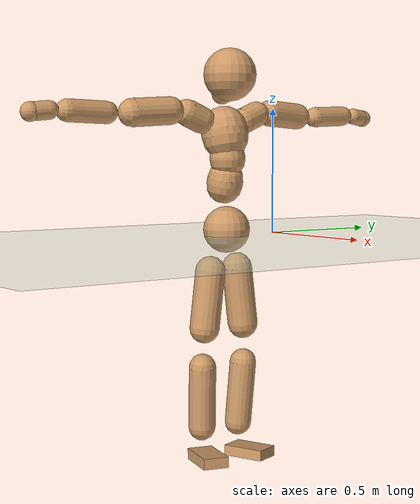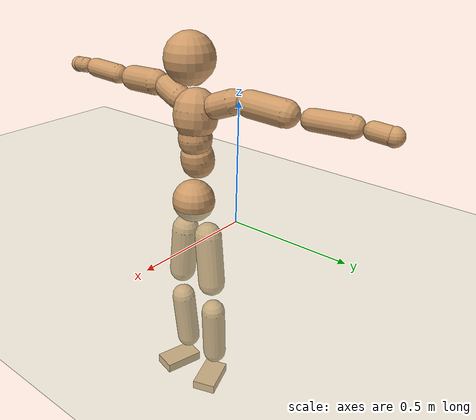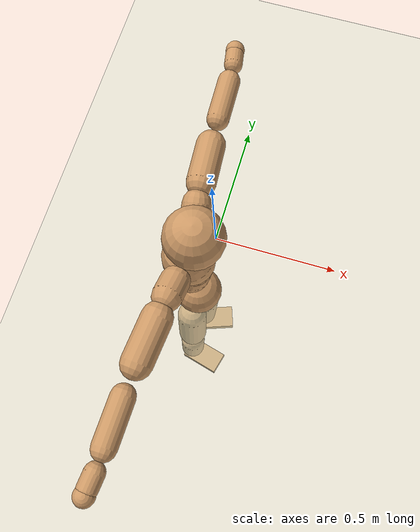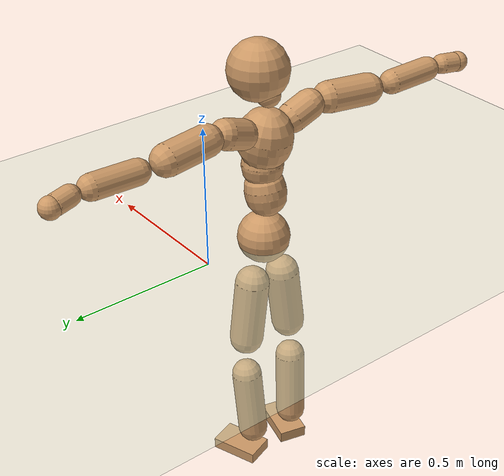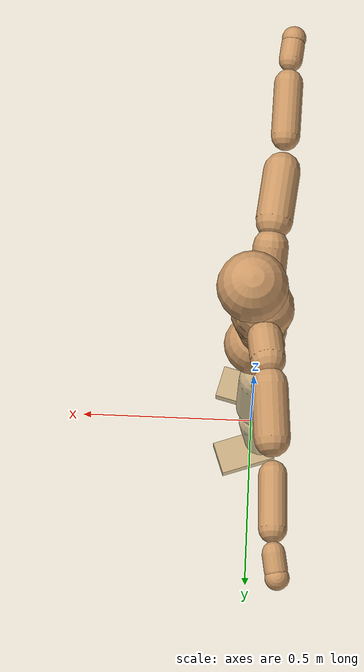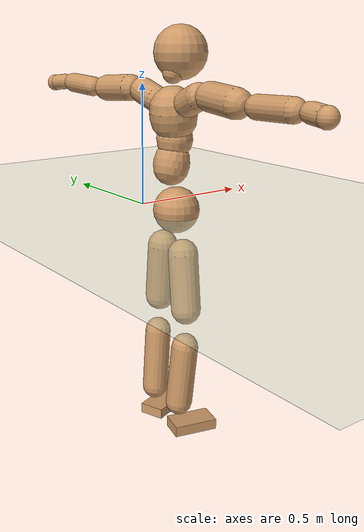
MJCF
<mujoco model="humanoid">
  <compiler coordinate="local"/>
  <default>
    <joint damping="0.0" armature="0.01" stiffness="0.0" limited="true"/>
    <geom conaffinity="1" condim="3" contype="7" margin="0.001" rgba="0.8 0.6 .4 1"/>
  </default>
  <asset>
    <texture type="skybox" builtin="gradient" rgb1=".4 .5 .6" rgb2="0 0 0" width="100" height="100"/>
    <texture builtin="flat" height="1278" mark="cross" markrgb="1 1 1" name="texgeom" random="0.01" rgb1="0.8 0.6 0.4" rgb2="0.8 0.6 0.4" type="cube" width="127"/>
    <texture builtin="checker" height="100" name="texplane" rgb1="0 0 0" rgb2="0.8 0.8 0.8" type="2d" width="100"/>
    <material name="MatPlane" reflectance="0.5" shininess="1" specular="1" texrepeat="60 60" texture="texplane"/>
    <material name="geom" texture="texgeom" texuniform="true"/>
  </asset>
  <worldbody>
    <light cutoff="100" diffuse="1 1 1" dir="-0 0 -1.3" directional="true" exponent="1" pos="0 0 1.3" specular=".1 .1 .1"/>
    <geom conaffinity="1" condim="3" name="floor" pos="0 0 0" rgba="0.8 0.9 0.8 1" size="100 100 .2" type="plane" material="MatPlane"/>
    <body name="Pelvis" pos="-0.0012 -0.2331 0.0225">
      <freejoint name="Pelvis"/>
      <geom type="sphere" contype="1" conaffinity="1" density="500" size="0.0921" pos="0.0000 0.0000 0.0000" name="Pelvis"/>
      <body name="L_Hip" pos="-0.0197 0.0568 -0.0801">
        <joint name="L_Hip_x" type="hinge" pos="0 0 0" axis="1 0 0" stiffness="800" damping="80" armature="0.02" range="-180.0000 180.0000"/>
        <joint name="L_Hip_y" type="hinge" pos="0 0 0" axis="0 1 0" stiffness="800" damping="80" armature="0.02" range="-180.0000 180.0000"/>
        <joint name="L_Hip_z" type="hinge" pos="0 0 0" axis="0 0 1" stiffness="800" damping="80" armature="0.02" range="-180.0000 180.0000"/>
        <geom type="capsule" contype="1" conaffinity="1" density="500" fromto="0.0016 0.0087 -0.0761 0.0062 0.0348 -0.3045" size="0.0597" name="L_Hip"/>
        <body name="L_Knee" pos="0.0078 0.0435 -0.3806">
          <joint name="L_Knee_x" type="hinge" pos="0 0 0" axis="1 0 0" stiffness="800" damping="80" armature="0.02" range="-180.0000 180.0000"/>
          <joint name="L_Knee_y" type="hinge" pos="0 0 0" axis="0 1 0" stiffness="800" damping="80" armature="0.02" range="-180.0000 180.0000"/>
          <joint name="L_Knee_z" type="hinge" pos="0 0 0" axis="0 0 1" stiffness="800" damping="80" armature="0.02" range="-180.0000 180.0000"/>
          <geom type="capsule" contype="1" conaffinity="1" density="500" fromto="-0.0071 -0.0028 -0.0832 -0.0286 -0.0113 -0.3329" size="0.0535" name="L_Knee"/>
          <body name="L_Ankle" pos="-0.0357 -0.0141 -0.4161">
            <joint name="L_Ankle_x" type="hinge" pos="0 0 0" axis="1 0 0" stiffness="800" damping="80" armature="0.02" range="-180.0000 180.0000"/>
            <joint name="L_Ankle_y" type="hinge" pos="0 0 0" axis="0 1 0" stiffness="800" damping="80" armature="0.02" range="-180.0000 180.0000"/>
            <joint name="L_Ankle_z" type="hinge" pos="0 0 0" axis="0 0 1" stiffness="800" damping="80" armature="0.02" range="-180.0000 180.0000"/>
            <geom type="box" contype="1" conaffinity="1" density="500" pos="0.0601 0.0212 -0.0297" size="0.0869 0.0519 0.0209" quat="0.9856 0.0000 0.0000 0.1690" name="L_Ankle"/>
            <body name="L_Toe" pos="0.1202 0.0425 -0.0593">
              <joint name="L_Toe_x" type="hinge" pos="0 0 0" axis="1 0 0" stiffness="500" damping="50" armature="0.02" range="-180.0000 180.0000"/>
              <joint name="L_Toe_y" type="hinge" pos="0 0 0" axis="0 1 0" stiffness="500" damping="50" armature="0.02" range="-180.0000 180.0000"/>
              <joint name="L_Toe_z" type="hinge" pos="0 0 0" axis="0 0 1" stiffness="500" damping="50" armature="0.02" range="-180.0000 180.0000"/>
              <geom type="box" contype="1" conaffinity="1" density="500" pos="0.0000 0.0000 0.0294" size="0.0011 0.0025 0.001" quat="0.9848 0.0000 0.0000 0.1736" name="L_Toe"/>
            </body>
          </body>
        </body>
      </body>
      <body name="R_Hip" pos="-0.0162 -0.0586 -0.088">
        <joint name="R_Hip_x" type="hinge" pos="0 0 0" axis="1 0 0" stiffness="800" damping="80" armature="0.02" range="-180.0000 180.0000"/>
        <joint name="R_Hip_y" type="hinge" pos="0 0 0" axis="0 1 0" stiffness="800" damping="80" armature="0.02" range="-180.0000 180.0000"/>
        <joint name="R_Hip_z" type="hinge" pos="0 0 0" axis="0 0 1" stiffness="800" damping="80" armature="0.02" range="-180.0000 180.0000"/>
        <geom type="capsule" contype="1" conaffinity="1" density="500" fromto="-0.0009 -0.0086 -0.0753 -0.0037 -0.0346 -0.3011" size="0.0592" name="R_Hip"/>
        <body name="R_Knee" pos="-0.0046 -0.0432 -0.3764">
          <joint name="R_Knee_x" type="hinge" pos="0 0 0" axis="1 0 0" stiffness="800" damping="80" armature="0.02" range="-180.0000 180.0000"/>
          <joint name="R_Knee_y" type="hinge" pos="0 0 0" axis="0 1 0" stiffness="800" damping="80" armature="0.02" range="-180.0000 180.0000"/>
          <joint name="R_Knee_z" type="hinge" pos="0 0 0" axis="0 0 1" stiffness="800" damping="80" armature="0.02" range="-180.0000 180.0000"/>
          <geom type="capsule" contype="1" conaffinity="1" density="500" fromto="-0.0066 0.0037 -0.0818 -0.0263 0.0148 -0.3271" size="0.0539" name="R_Knee"/>
          <body name="R_Ankle" pos="-0.0329 0.0185 -0.4089">
            <joint name="R_Ankle_x" type="hinge" pos="0 0 0" axis="1 0 0" stiffness="800" damping="80" armature="0.02" range="-180.0000 180.0000"/>
            <joint name="R_Ankle_y" type="hinge" pos="0 0 0" axis="0 1 0" stiffness="800" damping="80" armature="0.02" range="-180.0000 180.0000"/>
            <joint name="R_Ankle_z" type="hinge" pos="0 0 0" axis="0 0 1" stiffness="800" damping="80" armature="0.02" range="-180.0000 180.0000"/>
            <geom type="box" contype="1" conaffinity="1" density="500" pos="0.0644 -0.0165 -0.0308" size="0.0902 0.0509 0.0215" quat="0.9922 0.0000 0.0000 -0.1250" name="R_Ankle"/>
            <body name="R_Toe" pos="0.1289 -0.033 -0.0617">
              <joint name="R_Toe_x" type="hinge" pos="0 0 0" axis="1 0 0" stiffness="500" damping="50" armature="0.02" range="-180.0000 180.0000"/>
              <joint name="R_Toe_y" type="hinge" pos="0 0 0" axis="0 1 0" stiffness="500" damping="50" armature="0.02" range="-180.0000 180.0000"/>
              <joint name="R_Toe_z" type="hinge" pos="0 0 0" axis="0 0 1" stiffness="500" damping="50" armature="0.02" range="-180.0000 180.0000"/>
              <geom type="box" contype="1" conaffinity="1" density="500" pos="0.0000 0.0000 0.0315" size="0.0011 0.0025 0.0011" quat="0.9932 0.0000 0.0000 -0.1160" name="R_Toe"/>
            </body>
          </body>
        </body>
      </body>
      <body name="Torso" pos="-0.0334 0.0043 0.1192">
        <joint name="Torso_x" type="hinge" pos="0 0 0" axis="1 0 0" stiffness="1000" damping="100" armature="0.02" range="-180.0000 180.0000"/>
        <joint name="Torso_y" type="hinge" pos="0 0 0" axis="0 1 0" stiffness="1000" damping="100" armature="0.02" range="-180.0000 180.0000"/>
        <joint name="Torso_z" type="hinge" pos="0 0 0" axis="0 0 1" stiffness="1000" damping="100" armature="0.02" range="-180.0000 180.0000"/>
        <geom type="capsule" contype="1" conaffinity="1" density="500" fromto="0.0165 0.0025 0.0803 0.0110 0.0016 0.0535" size="0.070959" name="Torso"/>
        <body name="Spine" pos="0.0275 0.0041 0.1338">
          <joint name="Spine_x" type="hinge" pos="0 0 0" axis="1 0 0" stiffness="1000" damping="100" armature="0.02" range="-180.0000 180.0000"/>
          <joint name="Spine_y" type="hinge" pos="0 0 0" axis="0 1 0" stiffness="1000" damping="100" armature="0.02" range="-180.0000 180.0000"/>
          <joint name="Spine_z" type="hinge" pos="0 0 0" axis="0 0 1" stiffness="1000" damping="100" armature="0.02" range="-180.0000 180.0000"/>
          <geom type="capsule" contype="1" conaffinity="1" density="500" fromto="0.0015 -0.0014 0.0325 0.0010 -0.0009 0.0217" size="0.070773" name="Spine"/>
          <body name="Chest" pos="0.0025 -0.0023 0.0542">
            <joint name="Chest_x" type="hinge" pos="0 0 0" axis="1 0 0" stiffness="1000" damping="100" armature="0.02" range="-180.0000 180.0000"/>
            <joint name="Chest_y" type="hinge" pos="0 0 0" axis="0 1 0" stiffness="1000" damping="100" armature="0.02" range="-180.0000 180.0000"/>
            <joint name="Chest_z" type="hinge" pos="0 0 0" axis="0 0 1" stiffness="1000" damping="100" armature="0.02" range="-180.0000 180.0000"/>
            <geom type="capsule" contype="1" conaffinity="1" density="500" fromto="-0.0138 -0.0050 0.0854 -0.0092 -0.0034 0.0569" size="0.092163" name="Chest"/>
            <body name="Neck" pos="-0.0291 -0.0133 0.2062">
              <joint name="Neck_x" type="hinge" pos="0 0 0" axis="1 0 0" stiffness="500" damping="50" armature="0.02" range="-180.0000 180.0000"/>
              <joint name="Neck_y" type="hinge" pos="0 0 0" axis="0 1 0" stiffness="500" damping="50" armature="0.02" range="-180.0000 180.0000"/>
              <joint name="Neck_z" type="hinge" pos="0 0 0" axis="0 0 1" stiffness="500" damping="50" armature="0.02" range="-180.0000 180.0000"/>
              <geom type="capsule" contype="1" conaffinity="1" density="500" fromto="0.0101 0.0020 0.0182 0.0402 0.0079 0.0728" size="0.041478" name="Neck"/>
              <body name="Head" pos="0.0503 0.0099 0.091">
                <joint name="Head_x" type="hinge" pos="0 0 0" axis="1 0 0" stiffness="500" damping="50" armature="0.02" range="-180.0000 180.0000"/>
                <joint name="Head_y" type="hinge" pos="0 0 0" axis="0 1 0" stiffness="500" damping="50" armature="0.02" range="-180.0000 180.0000"/>
                <joint name="Head_z" type="hinge" pos="0 0 0" axis="0 0 1" stiffness="500" damping="50" armature="0.02" range="-180.0000 180.0000"/>
                <geom type="sphere" contype="1" conaffinity="1" density="500" size="0.1033" pos="0.0000 0.0000 0.0000" name="Head"/>
              </body>
            </body>
            <body name="L_Thorax" pos="-0.0179 0.0708 0.1108">
              <joint name="L_Thorax_x" type="hinge" pos="0 0 0" axis="1 0 0" stiffness="500" damping="50" armature="0.02" range="-180.0000 180.0000"/>
              <joint name="L_Thorax_y" type="hinge" pos="0 0 0" axis="0 1 0" stiffness="500" damping="50" armature="0.02" range="-180.0000 180.0000"/>
              <joint name="L_Thorax_z" type="hinge" pos="0 0 0" axis="0 0 1" stiffness="500" damping="50" armature="0.02" range="-180.0000 180.0000"/>
              <geom type="capsule" contype="1" conaffinity="1" density="500" fromto="-0.0035 0.0243 0.0092 -0.0142 0.0974 0.0369" size="0.0515" name="L_Thorax"/>
              <body name="L_Shoulder" pos="-0.0177 0.1217 0.0461">
                <joint name="L_Shoulder_x" type="hinge" pos="0 0 0" axis="1 0 0" stiffness="500" damping="50" armature="0.02" range="-720.0000 720.0000"/>
                <joint name="L_Shoulder_y" type="hinge" pos="0 0 0" axis="0 1 0" stiffness="500" damping="50" armature="0.02" range="-720.0000 720.0000"/>
                <joint name="L_Shoulder_z" type="hinge" pos="0 0 0" axis="0 0 1" stiffness="500" damping="50" armature="0.02" range="-720.0000 720.0000"/>
                <geom type="capsule" contype="1" conaffinity="1" density="500" fromto="-0.0041 0.0517 -0.0033 -0.0165 0.2069 -0.0133" size="0.0531" name="L_Shoulder"/>
                <body name="L_Elbow" pos="-0.0206 0.2586 -0.0166">
                  <joint name="L_Elbow_x" type="hinge" pos="0 0 0" axis="1 0 0" stiffness="500" damping="50" armature="0.02" range="-720.0000 720.0000"/>
                  <joint name="L_Elbow_y" type="hinge" pos="0 0 0" axis="0 1 0" stiffness="500" damping="50" armature="0.02" range="-720.0000 720.0000"/>
                  <joint name="L_Elbow_z" type="hinge" pos="0 0 0" axis="0 0 1" stiffness="500" damping="50" armature="0.02" range="-720.0000 720.0000"/>
                  <geom type="capsule" contype="1" conaffinity="1" density="500" fromto="-0.0016 0.0531 0.0024 -0.0066 0.2122 0.0097" size="0.0413" name="L_Elbow"/>
                  <body name="L_Wrist" pos="-0.0082 0.2653 0.0121">
                    <joint name="L_Wrist_x" type="hinge" pos="0 0 0" axis="1 0 0" stiffness="300" damping="30" armature="0.02" range="-180.0000 180.0000"/>
                    <joint name="L_Wrist_y" type="hinge" pos="0 0 0" axis="0 1 0" stiffness="300" damping="30" armature="0.02" range="-180.0000 180.0000"/>
                    <joint name="L_Wrist_z" type="hinge" pos="0 0 0" axis="0 0 1" stiffness="300" damping="30" armature="0.02" range="-180.0000 180.0000"/>
                    <geom type="capsule" contype="1" conaffinity="1" density="500" fromto="-0.0031 0.0173 -0.0021 -0.0125 0.0692 -0.0084" size="0.0338" name="L_Wrist"/>
                    <body name="L_Hand" pos="-0.0157 0.0865 -0.0105">
                      <joint name="L_Hand_x" type="hinge" pos="0 0 0" axis="1 0 0" stiffness="300" damping="30" armature="0.02" range="-180.0000 180.0000"/>
                      <joint name="L_Hand_y" type="hinge" pos="0 0 0" axis="0 1 0" stiffness="300" damping="30" armature="0.02" range="-180.0000 180.0000"/>
                      <joint name="L_Hand_z" type="hinge" pos="0 0 0" axis="0 0 1" stiffness="300" damping="30" armature="0.02" range="-180.0000 180.0000"/>
                      <geom type="sphere" contype="1" conaffinity="1" density="500" size="0.0354" pos="0.0000 0.0000 0.0000" name="L_Hand"/>
                    </body>
                  </body>
                </body>
              </body>
            </body>
            <body name="R_Thorax" pos="-0.0221 -0.0826 0.1098">
              <joint name="R_Thorax_x" type="hinge" pos="0 0 0" axis="1 0 0" stiffness="500" damping="50" armature="0.02" range="-180.0000 180.0000"/>
              <joint name="R_Thorax_y" type="hinge" pos="0 0 0" axis="0 1 0" stiffness="500" damping="50" armature="0.02" range="-180.0000 180.0000"/>
              <joint name="R_Thorax_z" type="hinge" pos="0 0 0" axis="0 0 1" stiffness="500" damping="50" armature="0.02" range="-180.0000 180.0000"/>
              <geom type="capsule" contype="1" conaffinity="1" density="500" fromto="-0.0014 -0.0225 0.0096 -0.0058 -0.0901 0.0383" size="0.0519" name="R_Thorax"/>
              <body name="R_Shoulder" pos="-0.0072 -0.1127 0.0479">
                <joint name="R_Shoulder_x" type="hinge" pos="0 0 0" axis="1 0 0" stiffness="500" damping="50" armature="0.02" range="-720.0000 720.0000"/>
                <joint name="R_Shoulder_y" type="hinge" pos="0 0 0" axis="0 1 0" stiffness="500" damping="50" armature="0.02" range="-720.0000 720.0000"/>
                <joint name="R_Shoulder_z" type="hinge" pos="0 0 0" axis="0 0 1" stiffness="500" damping="50" armature="0.02" range="-720.0000 720.0000"/>
                <geom type="capsule" contype="1" conaffinity="1" density="500" fromto="-0.0057 -0.0526 -0.0033 -0.0230 -0.2105 -0.0131" size="0.0544" name="R_Shoulder"/>
                <body name="R_Elbow" pos="-0.0287 -0.2631 -0.0164">
                  <joint name="R_Elbow_x" type="hinge" pos="0 0 0" axis="1 0 0" stiffness="500" damping="50" armature="0.02" range="-720.0000 720.0000"/>
                  <joint name="R_Elbow_y" type="hinge" pos="0 0 0" axis="0 1 0" stiffness="500" damping="50" armature="0.02" range="-720.0000 720.0000"/>
                  <joint name="R_Elbow_z" type="hinge" pos="0 0 0" axis="0 0 1" stiffness="500" damping="50" armature="0.02" range="-720.0000 720.0000"/>
                  <geom type="capsule" contype="1" conaffinity="1" density="500" fromto="-0.0012 -0.0542 0.0016 -0.0048 -0.2166 0.0064" size="0.0424" name="R_Elbow"/>
                  <body name="R_Wrist" pos="-0.006 -0.2708 0.008">
                    <joint name="R_Wrist_x" type="hinge" pos="0 0 0" axis="1 0 0" stiffness="300" damping="30" armature="0.02" range="-180.0000 180.0000"/>
                    <joint name="R_Wrist_y" type="hinge" pos="0 0 0" axis="0 1 0" stiffness="300" damping="30" armature="0.02" range="-180.0000 180.0000"/>
                    <joint name="R_Wrist_z" type="hinge" pos="0 0 0" axis="0 0 1" stiffness="300" damping="30" armature="0.02" range="-180.0000 180.0000"/>
                    <geom type="capsule" contype="1" conaffinity="1" density="500" fromto="-0.0020 -0.0178 -0.0017 -0.0082 -0.0712 -0.0069" size="0.0348" name="R_Wrist"/>
                    <body name="R_Hand" pos="-0.0102 -0.089 -0.0087">
                      <joint name="R_Hand_x" type="hinge" pos="0 0 0" axis="1 0 0" stiffness="300" damping="30" armature="0.02" range="-180.0000 180.0000"/>
                      <joint name="R_Hand_y" type="hinge" pos="0 0 0" axis="0 1 0" stiffness="300" damping="30" armature="0.02" range="-180.0000 180.0000"/>
                      <joint name="R_Hand_z" type="hinge" pos="0 0 0" axis="0 0 1" stiffness="300" damping="30" armature="0.02" range="-180.0000 180.0000"/>
                      <geom type="sphere" contype="1" conaffinity="1" density="500" size="0.0361" pos="0.0000 0.0000 0.0000" name="R_Hand"/>
                    </body>
                  </body>
                </body>
              </body>
            </body>
          </body>
        </body>
      </body>
    </body>
  </worldbody>
  <actuator>
    <motor name="L_Hip_x" joint="L_Hip_x" gear="500"/>
    <motor name="L_Hip_y" joint="L_Hip_y" gear="500"/>
    <motor name="L_Hip_z" joint="L_Hip_z" gear="500"/>
    <motor name="L_Knee_x" joint="L_Knee_x" gear="500"/>
    <motor name="L_Knee_y" joint="L_Knee_y" gear="500"/>
    <motor name="L_Knee_z" joint="L_Knee_z" gear="500"/>
    <motor name="L_Ankle_x" joint="L_Ankle_x" gear="500"/>
    <motor name="L_Ankle_y" joint="L_Ankle_y" gear="500"/>
    <motor name="L_Ankle_z" joint="L_Ankle_z" gear="500"/>
    <motor name="L_Toe_x" joint="L_Toe_x" gear="500"/>
    <motor name="L_Toe_y" joint="L_Toe_y" gear="500"/>
    <motor name="L_Toe_z" joint="L_Toe_z" gear="500"/>
    <motor name="R_Hip_x" joint="R_Hip_x" gear="500"/>
    <motor name="R_Hip_y" joint="R_Hip_y" gear="500"/>
    <motor name="R_Hip_z" joint="R_Hip_z" gear="500"/>
    <motor name="R_Knee_x" joint="R_Knee_x" gear="500"/>
    <motor name="R_Knee_y" joint="R_Knee_y" gear="500"/>
    <motor name="R_Knee_z" joint="R_Knee_z" gear="500"/>
    <motor name="R_Ankle_x" joint="R_Ankle_x" gear="500"/>
    <motor name="R_Ankle_y" joint="R_Ankle_y" gear="500"/>
    <motor name="R_Ankle_z" joint="R_Ankle_z" gear="500"/>
    <motor name="R_Toe_x" joint="R_Toe_x" gear="500"/>
    <motor name="R_Toe_y" joint="R_Toe_y" gear="500"/>
    <motor name="R_Toe_z" joint="R_Toe_z" gear="500"/>
    <motor name="Torso_x" joint="Torso_x" gear="500"/>
    <motor name="Torso_y" joint="Torso_y" gear="500"/>
    <motor name="Torso_z" joint="Torso_z" gear="500"/>
    <motor name="Spine_x" joint="Spine_x" gear="500"/>
    <motor name="Spine_y" joint="Spine_y" gear="500"/>
    <motor name="Spine_z" joint="Spine_z" gear="500"/>
    <motor name="Chest_x" joint="Chest_x" gear="500"/>
    <motor name="Chest_y" joint="Chest_y" gear="500"/>
    <motor name="Chest_z" joint="Chest_z" gear="500"/>
    <motor name="Neck_x" joint="Neck_x" gear="500"/>
    <motor name="Neck_y" joint="Neck_y" gear="500"/>
    <motor name="Neck_z" joint="Neck_z" gear="500"/>
    <motor name="Head_x" joint="Head_x" gear="500"/>
    <motor name="Head_y" joint="Head_y" gear="500"/>
    <motor name="Head_z" joint="Head_z" gear="500"/>
    <motor name="L_Thorax_x" joint="L_Thorax_x" gear="500"/>
    <motor name="L_Thorax_y" joint="L_Thorax_y" gear="500"/>
    <motor name="L_Thorax_z" joint="L_Thorax_z" gear="500"/>
    <motor name="L_Shoulder_x" joint="L_Shoulder_x" gear="500"/>
    <motor name="L_Shoulder_y" joint="L_Shoulder_y" gear="500"/>
    <motor name="L_Shoulder_z" joint="L_Shoulder_z" gear="500"/>
    <motor name="L_Elbow_x" joint="L_Elbow_x" gear="500"/>
    <motor name="L_Elbow_y" joint="L_Elbow_y" gear="500"/>
    <motor name="L_Elbow_z" joint="L_Elbow_z" gear="500"/>
    <motor name="L_Wrist_x" joint="L_Wrist_x" gear="500"/>
    <motor name="L_Wrist_y" joint="L_Wrist_y" gear="500"/>
    <motor name="L_Wrist_z" joint="L_Wrist_z" gear="500"/>
    <motor name="L_Hand_x" joint="L_Hand_x" gear="500"/>
    <motor name="L_Hand_y" joint="L_Hand_y" gear="500"/>
    <motor name="L_Hand_z" joint="L_Hand_z" gear="500"/>
    <motor name="R_Thorax_x" joint="R_Thorax_x" gear="500"/>
    <motor name="R_Thorax_y" joint="R_Thorax_y" gear="500"/>
    <motor name="R_Thorax_z" joint="R_Thorax_z" gear="500"/>
    <motor name="R_Shoulder_x" joint="R_Shoulder_x" gear="500"/>
    <motor name="R_Shoulder_y" joint="R_Shoulder_y" gear="500"/>
    <motor name="R_Shoulder_z" joint="R_Shoulder_z" gear="500"/>
    <motor name="R_Elbow_x" joint="R_Elbow_x" gear="500"/>
    <motor name="R_Elbow_y" joint="R_Elbow_y" gear="500"/>
    <motor name="R_Elbow_z" joint="R_Elbow_z" gear="500"/>
    <motor name="R_Wrist_x" joint="R_Wrist_x" gear="500"/>
    <motor name="R_Wrist_y" joint="R_Wrist_y" gear="500"/>
    <motor name="R_Wrist_z" joint="R_Wrist_z" gear="500"/>
    <motor name="R_Hand_x" joint="R_Hand_x" gear="500"/>
    <motor name="R_Hand_y" joint="R_Hand_y" gear="500"/>
    <motor name="R_Hand_z" joint="R_Hand_z" gear="500"/>
  </actuator>
  <contact>
    <exclude body1="Torso" body2="Chest"/>
    <exclude body1="Head" body2="Chest"/>
    <exclude body1="R_Knee" body2="R_Toe"/>
    <exclude body1="R_Knee" body2="L_Ankle"/>
    <exclude body1="R_Knee" body2="L_Toe"/>
    <exclude body1="L_Knee" body2="L_Toe"/>
    <exclude body1="L_Knee" body2="R_Ankle"/>
    <exclude body1="L_Knee" body2="R_Toe"/>
    <exclude body1="L_Shoulder" body2="Chest"/>
    <exclude body1="R_Shoulder" body2="Chest"/>
  </contact>
  <sensor/>
  <size njmax="700" nconmax="700"/>
</mujoco>
